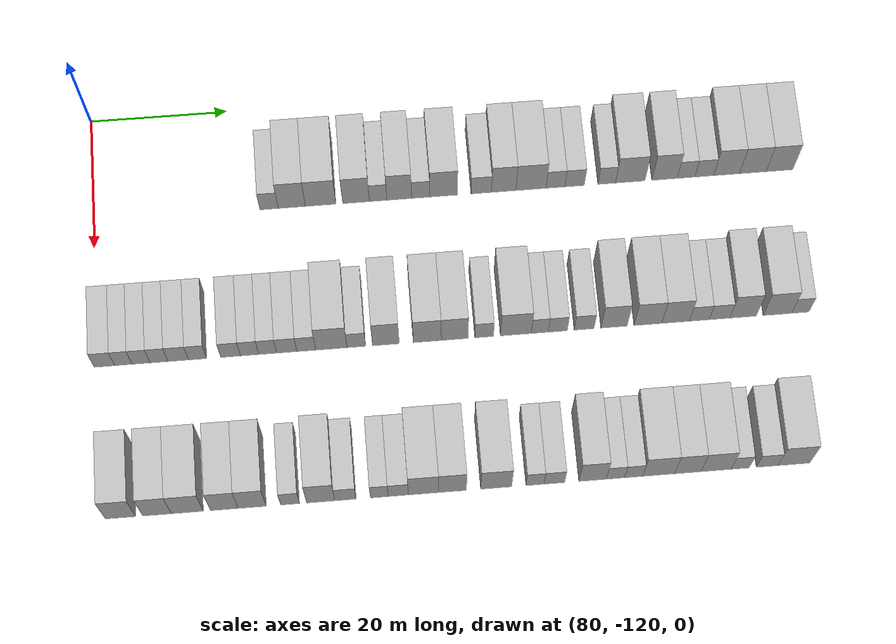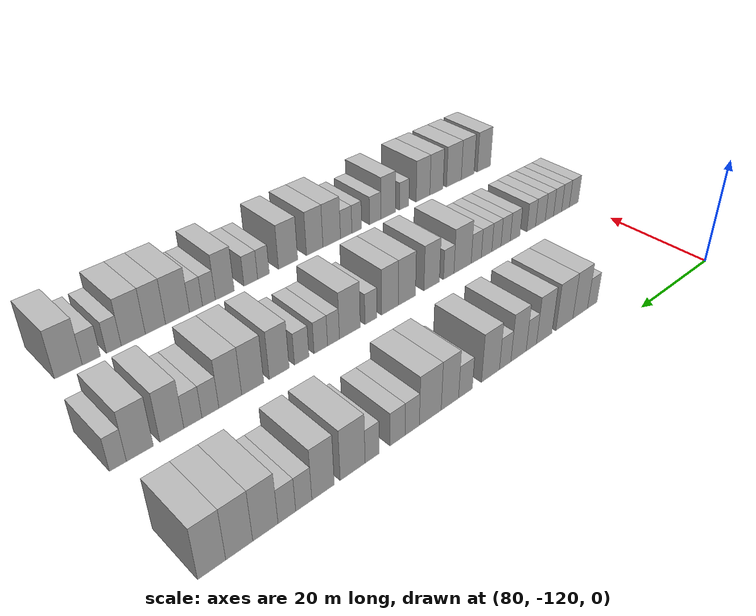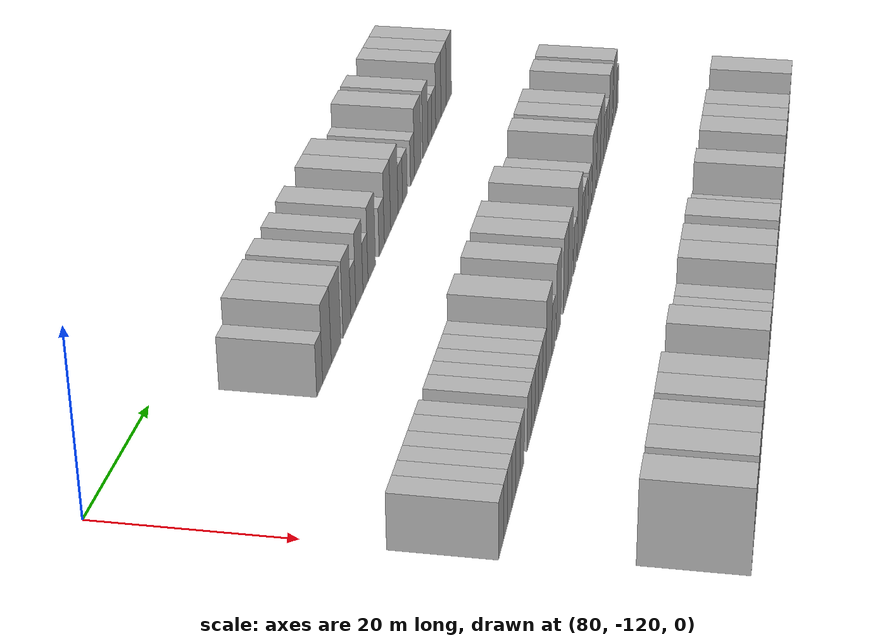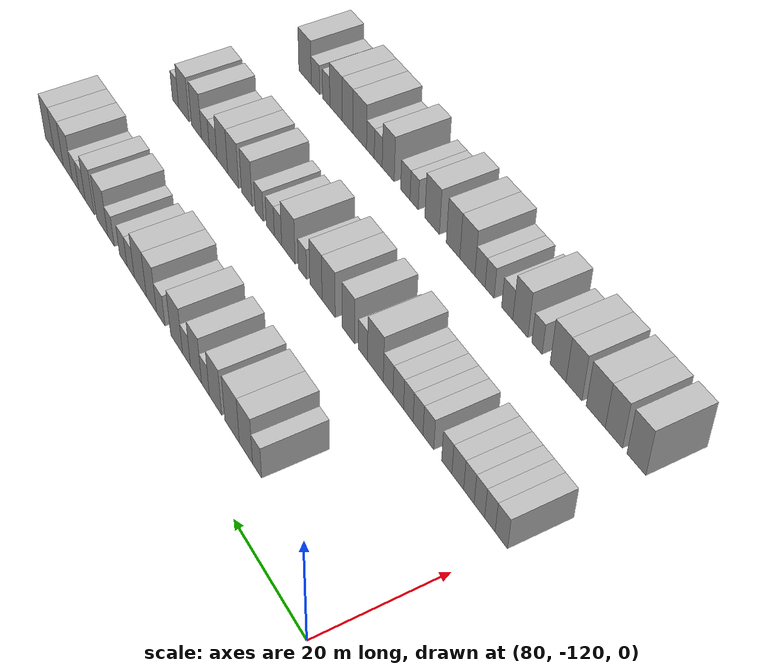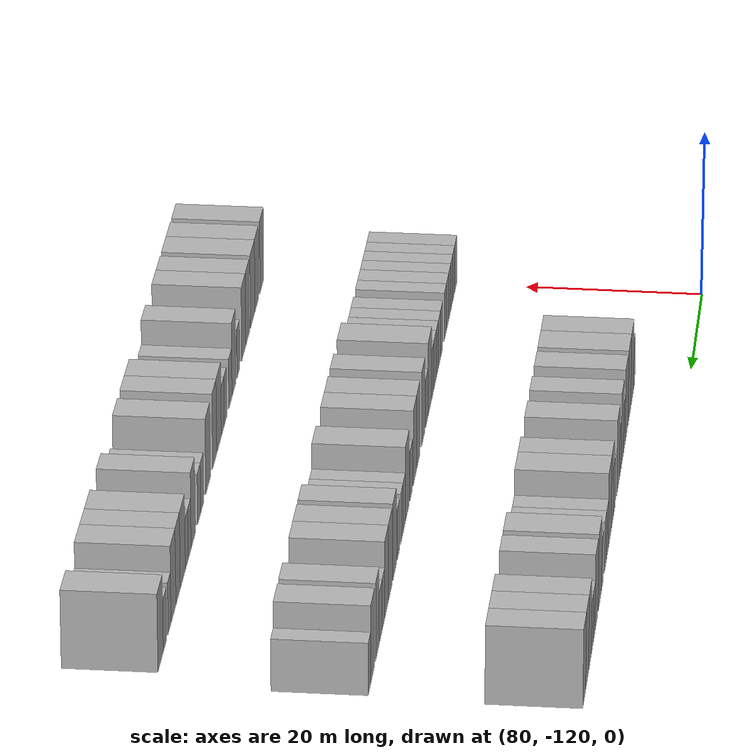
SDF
<sdf version="1.6">
 <world name="default">
  <model name="building_606">
   <static>1</static>
   <pose>91.0000 -94.5255 0 0.000000 0.000000 0.000000</pose>
   <link name="link">
    <pose>0 0 3.00 0 0 0</pose>
    <collision name="collision"><geometry><box><size>10.0000 2.6477 6.0000</size></box></geometry></collision>
    <visual name="visual">
     <cast_shadows>0</cast_shadows>
     <geometry><box><size>10.0000 2.6477 6.0000</size></box></geometry>
     <material>
      <script>
       <uri>model://HANNAS_wall/materials/scripts</uri>
       <uri>model://HANNAS_wall/materials/textures</uri>
       <name>vrc/HANNAS_wall</name>
      </script>
     </material>
    </visual>
   </link>
  </model>
  <model name="building_607">
   <static>1</static>
   <pose>91.0000 -91.2226 0 0.000000 0.000000 0.000000</pose>
   <link name="link">
    <pose>0 0 4.50 0 0 0</pose>
    <collision name="collision"><geometry><box><size>10.0000 3.9582 9.0000</size></box></geometry></collision>
    <visual name="visual">
     <cast_shadows>0</cast_shadows>
     <geometry><box><size>10.0000 3.9582 9.0000</size></box></geometry>
     <material>
      <script>
       <uri>model://HANNAS_wall/materials/scripts</uri>
       <uri>model://HANNAS_wall/materials/textures</uri>
       <name>vrc/HANNAS_wall</name>
      </script>
     </material>
    </visual>
   </link>
  </model>
  <model name="building_608">
   <static>1</static>
   <pose>91.0000 -87.0188 0 0.000000 0.000000 0.000000</pose>
   <link name="link">
    <pose>0 0 4.50 0 0 0</pose>
    <collision name="collision"><geometry><box><size>10.0000 4.4495 9.0000</size></box></geometry></collision>
    <visual name="visual">
     <cast_shadows>0</cast_shadows>
     <geometry><box><size>10.0000 4.4495 9.0000</size></box></geometry>
     <material>
      <script>
       <uri>model://HANNAS_wall/materials/scripts</uri>
       <uri>model://HANNAS_wall/materials/textures</uri>
       <name>vrc/HANNAS_wall</name>
      </script>
     </material>
    </visual>
   </link>
  </model>
  <model name="building_609">
   <static>1</static>
   <pose>91.0000 -81.8530 0 0.000000 0.000000 0.000000</pose>
   <link name="link">
    <pose>0 0 4.50 0 0 0</pose>
    <collision name="collision"><geometry><box><size>10.0000 3.8821 9.0000</size></box></geometry></collision>
    <visual name="visual">
     <cast_shadows>0</cast_shadows>
     <geometry><box><size>10.0000 3.8821 9.0000</size></box></geometry>
     <material>
      <script>
       <uri>model://HANNAS_wall/materials/scripts</uri>
       <uri>model://HANNAS_wall/materials/textures</uri>
       <name>vrc/HANNAS_wall</name>
      </script>
     </material>
    </visual>
   </link>
  </model>
  <model name="building_610">
   <static>1</static>
   <pose>91.0000 -78.6472 0 0.000000 0.000000 0.000000</pose>
   <link name="link">
    <pose>0 0 3.00 0 0 0</pose>
    <collision name="collision"><geometry><box><size>10.0000 2.5294 6.0000</size></box></geometry></collision>
    <visual name="visual">
     <cast_shadows>0</cast_shadows>
     <geometry><box><size>10.0000 2.5294 6.0000</size></box></geometry>
     <material>
      <script>
       <uri>model://HANNAS_wall/materials/scripts</uri>
       <uri>model://HANNAS_wall/materials/textures</uri>
       <name>vrc/HANNAS_wall</name>
      </script>
     </material>
    </visual>
   </link>
  </model>
  <model name="building_611">
   <static>1</static>
   <pose>91.0000 -75.5657 0 0.000000 0.000000 0.000000</pose>
   <link name="link">
    <pose>0 0 4.50 0 0 0</pose>
    <collision name="collision"><geometry><box><size>10.0000 3.6338 9.0000</size></box></geometry></collision>
    <visual name="visual">
     <cast_shadows>0</cast_shadows>
     <geometry><box><size>10.0000 3.6338 9.0000</size></box></geometry>
     <material>
      <script>
       <uri>model://HANNAS_wall/materials/scripts</uri>
       <uri>model://HANNAS_wall/materials/textures</uri>
       <name>vrc/HANNAS_wall</name>
      </script>
     </material>
    </visual>
   </link>
  </model>
  <model name="building_612">
   <static>1</static>
   <pose>91.0000 -72.4222 0 0.000000 0.000000 0.000000</pose>
   <link name="link">
    <pose>0 0 3.00 0 0 0</pose>
    <collision name="collision"><geometry><box><size>10.0000 2.6531 6.0000</size></box></geometry></collision>
    <visual name="visual">
     <cast_shadows>0</cast_shadows>
     <geometry><box><size>10.0000 2.6531 6.0000</size></box></geometry>
     <material>
      <script>
       <uri>model://HANNAS_wall/materials/scripts</uri>
       <uri>model://HANNAS_wall/materials/textures</uri>
       <name>vrc/HANNAS_wall</name>
      </script>
     </material>
    </visual>
   </link>
  </model>
  <model name="building_613">
   <static>1</static>
   <pose>91.0000 -69.0780 0 0.000000 0.000000 0.000000</pose>
   <link name="link">
    <pose>0 0 4.50 0 0 0</pose>
    <collision name="collision"><geometry><box><size>10.0000 4.0353 9.0000</size></box></geometry></collision>
    <visual name="visual">
     <cast_shadows>0</cast_shadows>
     <geometry><box><size>10.0000 4.0353 9.0000</size></box></geometry>
     <material>
      <script>
       <uri>model://HANNAS_wall/materials/scripts</uri>
       <uri>model://HANNAS_wall/materials/textures</uri>
       <name>vrc/HANNAS_wall</name>
      </script>
     </material>
    </visual>
   </link>
  </model>
  <model name="building_614">
   <static>1</static>
   <pose>91.0000 -63.5770 0 0.000000 0.000000 0.000000</pose>
   <link name="link">
    <pose>0 0 3.00 0 0 0</pose>
    <collision name="collision"><geometry><box><size>10.0000 2.9668 6.0000</size></box></geometry></collision>
    <visual name="visual">
     <cast_shadows>0</cast_shadows>
     <geometry><box><size>10.0000 2.9668 6.0000</size></box></geometry>
     <material>
      <script>
       <uri>model://HANNAS_wall/materials/scripts</uri>
       <uri>model://HANNAS_wall/materials/textures</uri>
       <name>vrc/HANNAS_wall</name>
      </script>
     </material>
    </visual>
   </link>
  </model>
  <model name="building_615">
   <static>1</static>
   <pose>91.0000 -60.2850 0 0.000000 0.000000 0.000000</pose>
   <link name="link">
    <pose>0 0 4.50 0 0 0</pose>
    <collision name="collision"><geometry><box><size>10.0000 3.6172 9.0000</size></box></geometry></collision>
    <visual name="visual">
     <cast_shadows>0</cast_shadows>
     <geometry><box><size>10.0000 3.6172 9.0000</size></box></geometry>
     <material>
      <script>
       <uri>model://HANNAS_wall/materials/scripts</uri>
       <uri>model://HANNAS_wall/materials/textures</uri>
       <name>vrc/HANNAS_wall</name>
      </script>
     </material>
    </visual>
   </link>
  </model>
  <model name="building_616">
   <static>1</static>
   <pose>91.0000 -56.2791 0 0.000000 0.000000 0.000000</pose>
   <link name="link">
    <pose>0 0 4.50 0 0 0</pose>
    <collision name="collision"><geometry><box><size>10.0000 4.3946 9.0000</size></box></geometry></collision>
    <visual name="visual">
     <cast_shadows>0</cast_shadows>
     <geometry><box><size>10.0000 4.3946 9.0000</size></box></geometry>
     <material>
      <script>
       <uri>model://HANNAS_wall/materials/scripts</uri>
       <uri>model://HANNAS_wall/materials/textures</uri>
       <name>vrc/HANNAS_wall</name>
      </script>
     </material>
    </visual>
   </link>
  </model>
  <model name="building_617">
   <static>1</static>
   <pose>91.0000 -52.6992 0 0.000000 0.000000 0.000000</pose>
   <link name="link">
    <pose>0 0 3.00 0 0 0</pose>
    <collision name="collision"><geometry><box><size>10.0000 2.7652 6.0000</size></box></geometry></collision>
    <visual name="visual">
     <cast_shadows>0</cast_shadows>
     <geometry><box><size>10.0000 2.7652 6.0000</size></box></geometry>
     <material>
      <script>
       <uri>model://HANNAS_wall/materials/scripts</uri>
       <uri>model://HANNAS_wall/materials/textures</uri>
       <name>vrc/HANNAS_wall</name>
      </script>
     </material>
    </visual>
   </link>
  </model>
  <model name="building_618">
   <static>1</static>
   <pose>91.0000 -49.8951 0 0.000000 0.000000 0.000000</pose>
   <link name="link">
    <pose>0 0 3.00 0 0 0</pose>
    <collision name="collision"><geometry><box><size>10.0000 2.8431 6.0000</size></box></geometry></collision>
    <visual name="visual">
     <cast_shadows>0</cast_shadows>
     <geometry><box><size>10.0000 2.8431 6.0000</size></box></geometry>
     <material>
      <script>
       <uri>model://HANNAS_wall/materials/scripts</uri>
       <uri>model://HANNAS_wall/materials/textures</uri>
       <name>vrc/HANNAS_wall</name>
      </script>
     </material>
    </visual>
   </link>
  </model>
  <model name="building_619">
   <static>1</static>
   <pose>91.0000 -45.1907 0 0.000000 0.000000 0.000000</pose>
   <link name="link">
    <pose>0 0 3.00 0 0 0</pose>
    <collision name="collision"><geometry><box><size>10.0000 2.5656 6.0000</size></box></geometry></collision>
    <visual name="visual">
     <cast_shadows>0</cast_shadows>
     <geometry><box><size>10.0000 2.5656 6.0000</size></box></geometry>
     <material>
      <script>
       <uri>model://HANNAS_wall/materials/scripts</uri>
       <uri>model://HANNAS_wall/materials/textures</uri>
       <name>vrc/HANNAS_wall</name>
      </script>
     </material>
    </visual>
   </link>
  </model>
  <model name="building_620">
   <static>1</static>
   <pose>91.0000 -41.7335 0 0.000000 0.000000 0.000000</pose>
   <link name="link">
    <pose>0 0 4.50 0 0 0</pose>
    <collision name="collision"><geometry><box><size>10.0000 4.3489 9.0000</size></box></geometry></collision>
    <visual name="visual">
     <cast_shadows>0</cast_shadows>
     <geometry><box><size>10.0000 4.3489 9.0000</size></box></geometry>
     <material>
      <script>
       <uri>model://HANNAS_wall/materials/scripts</uri>
       <uri>model://HANNAS_wall/materials/textures</uri>
       <name>vrc/HANNAS_wall</name>
      </script>
     </material>
    </visual>
   </link>
  </model>
  <model name="building_621">
   <static>1</static>
   <pose>91.0000 -36.6968 0 0.000000 0.000000 0.000000</pose>
   <link name="link">
    <pose>0 0 4.50 0 0 0</pose>
    <collision name="collision"><geometry><box><size>10.0000 3.7246 9.0000</size></box></geometry></collision>
    <visual name="visual">
     <cast_shadows>0</cast_shadows>
     <geometry><box><size>10.0000 3.7246 9.0000</size></box></geometry>
     <material>
      <script>
       <uri>model://HANNAS_wall/materials/scripts</uri>
       <uri>model://HANNAS_wall/materials/textures</uri>
       <name>vrc/HANNAS_wall</name>
      </script>
     </material>
    </visual>
   </link>
  </model>
  <model name="building_622">
   <static>1</static>
   <pose>91.0000 -33.5340 0 0.000000 0.000000 0.000000</pose>
   <link name="link">
    <pose>0 0 3.00 0 0 0</pose>
    <collision name="collision"><geometry><box><size>10.0000 2.6009 6.0000</size></box></geometry></collision>
    <visual name="visual">
     <cast_shadows>0</cast_shadows>
     <geometry><box><size>10.0000 2.6009 6.0000</size></box></geometry>
     <material>
      <script>
       <uri>model://HANNAS_wall/materials/scripts</uri>
       <uri>model://HANNAS_wall/materials/textures</uri>
       <name>vrc/HANNAS_wall</name>
      </script>
     </material>
    </visual>
   </link>
  </model>
  <model name="building_623">
   <static>1</static>
   <pose>91.0000 -30.8501 0 0.000000 0.000000 0.000000</pose>
   <link name="link">
    <pose>0 0 3.00 0 0 0</pose>
    <collision name="collision"><geometry><box><size>10.0000 2.7669 6.0000</size></box></geometry></collision>
    <visual name="visual">
     <cast_shadows>0</cast_shadows>
     <geometry><box><size>10.0000 2.7669 6.0000</size></box></geometry>
     <material>
      <script>
       <uri>model://HANNAS_wall/materials/scripts</uri>
       <uri>model://HANNAS_wall/materials/textures</uri>
       <name>vrc/HANNAS_wall</name>
      </script>
     </material>
    </visual>
   </link>
  </model>
  <model name="building_624">
   <static>1</static>
   <pose>91.0000 -27.5535 0 0.000000 0.000000 0.000000</pose>
   <link name="link">
    <pose>0 0 4.50 0 0 0</pose>
    <collision name="collision"><geometry><box><size>10.0000 3.8263 9.0000</size></box></geometry></collision>
    <visual name="visual">
     <cast_shadows>0</cast_shadows>
     <geometry><box><size>10.0000 3.8263 9.0000</size></box></geometry>
     <material>
      <script>
       <uri>model://HANNAS_wall/materials/scripts</uri>
       <uri>model://HANNAS_wall/materials/textures</uri>
       <name>vrc/HANNAS_wall</name>
      </script>
     </material>
    </visual>
   </link>
  </model>
  <model name="building_625">
   <static>1</static>
   <pose>91.0000 -23.6787 0 0.000000 0.000000 0.000000</pose>
   <link name="link">
    <pose>0 0 4.50 0 0 0</pose>
    <collision name="collision"><geometry><box><size>10.0000 3.9233 9.0000</size></box></geometry></collision>
    <visual name="visual">
     <cast_shadows>0</cast_shadows>
     <geometry><box><size>10.0000 3.9233 9.0000</size></box></geometry>
     <material>
      <script>
       <uri>model://HANNAS_wall/materials/scripts</uri>
       <uri>model://HANNAS_wall/materials/textures</uri>
       <name>vrc/HANNAS_wall</name>
      </script>
     </material>
    </visual>
   </link>
  </model>
  <model name="building_626">
   <static>1</static>
   <pose>91.0000 -19.7520 0 0.000000 0.000000 0.000000</pose>
   <link name="link">
    <pose>0 0 4.50 0 0 0</pose>
    <collision name="collision"><geometry><box><size>10.0000 3.9300 9.0000</size></box></geometry></collision>
    <visual name="visual">
     <cast_shadows>0</cast_shadows>
     <geometry><box><size>10.0000 3.9300 9.0000</size></box></geometry>
     <material>
      <script>
       <uri>model://HANNAS_wall/materials/scripts</uri>
       <uri>model://HANNAS_wall/materials/textures</uri>
       <name>vrc/HANNAS_wall</name>
      </script>
     </material>
    </visual>
   </link>
  </model>
  <model name="building_788">
   <static>1</static>
   <pose>113.0000 -118.9623 0 0.000000 0.000000 0.000000</pose>
   <link name="link">
    <pose>0 0 3.00 0 0 0</pose>
    <collision name="collision"><geometry><box><size>10.0000 2.8851 6.0000</size></box></geometry></collision>
    <visual name="visual">
     <cast_shadows>0</cast_shadows>
     <geometry><box><size>10.0000 2.8851 6.0000</size></box></geometry>
     <material>
      <script>
       <uri>model://HANNAS_wall/materials/scripts</uri>
       <uri>model://HANNAS_wall/materials/textures</uri>
       <name>vrc/HANNAS_wall</name>
      </script>
     </material>
    </visual>
   </link>
  </model>
  <model name="building_789">
   <static>1</static>
   <pose>113.0000 -116.2864 0 0.000000 0.000000 0.000000</pose>
   <link name="link">
    <pose>0 0 3.00 0 0 0</pose>
    <collision name="collision"><geometry><box><size>10.0000 2.4666 6.0000</size></box></geometry></collision>
    <visual name="visual">
     <cast_shadows>0</cast_shadows>
     <geometry><box><size>10.0000 2.4666 6.0000</size></box></geometry>
     <material>
      <script>
       <uri>model://HANNAS_wall/materials/scripts</uri>
       <uri>model://HANNAS_wall/materials/textures</uri>
       <name>vrc/HANNAS_wall</name>
      </script>
     </material>
    </visual>
   </link>
  </model>
  <model name="building_790">
   <static>1</static>
   <pose>113.0000 -113.7931 0 0.000000 0.000000 0.000000</pose>
   <link name="link">
    <pose>0 0 3.00 0 0 0</pose>
    <collision name="collision"><geometry><box><size>10.0000 2.5202 6.0000</size></box></geometry></collision>
    <visual name="visual">
     <cast_shadows>0</cast_shadows>
     <geometry><box><size>10.0000 2.5202 6.0000</size></box></geometry>
     <material>
      <script>
       <uri>model://HANNAS_wall/materials/scripts</uri>
       <uri>model://HANNAS_wall/materials/textures</uri>
       <name>vrc/HANNAS_wall</name>
      </script>
     </material>
    </visual>
   </link>
  </model>
  <model name="building_791">
   <static>1</static>
   <pose>113.0000 -111.2642 0 0.000000 0.000000 0.000000</pose>
   <link name="link">
    <pose>0 0 3.00 0 0 0</pose>
    <collision name="collision"><geometry><box><size>10.0000 2.5375 6.0000</size></box></geometry></collision>
    <visual name="visual">
     <cast_shadows>0</cast_shadows>
     <geometry><box><size>10.0000 2.5375 6.0000</size></box></geometry>
     <material>
      <script>
       <uri>model://HANNAS_wall/materials/scripts</uri>
       <uri>model://HANNAS_wall/materials/textures</uri>
       <name>vrc/HANNAS_wall</name>
      </script>
     </material>
    </visual>
   </link>
  </model>
  <model name="building_792">
   <static>1</static>
   <pose>113.0000 -108.5388 0 0.000000 0.000000 0.000000</pose>
   <link name="link">
    <pose>0 0 3.00 0 0 0</pose>
    <collision name="collision"><geometry><box><size>10.0000 2.9134 6.0000</size></box></geometry></collision>
    <visual name="visual">
     <cast_shadows>0</cast_shadows>
     <geometry><box><size>10.0000 2.9134 6.0000</size></box></geometry>
     <material>
      <script>
       <uri>model://HANNAS_wall/materials/scripts</uri>
       <uri>model://HANNAS_wall/materials/textures</uri>
       <name>vrc/HANNAS_wall</name>
      </script>
     </material>
    </visual>
   </link>
  </model>
  <model name="building_793">
   <static>1</static>
   <pose>113.0000 -105.7980 0 0.000000 0.000000 0.000000</pose>
   <link name="link">
    <pose>0 0 3.00 0 0 0</pose>
    <collision name="collision"><geometry><box><size>10.0000 2.5682 6.0000</size></box></geometry></collision>
    <visual name="visual">
     <cast_shadows>0</cast_shadows>
     <geometry><box><size>10.0000 2.5682 6.0000</size></box></geometry>
     <material>
      <script>
       <uri>model://HANNAS_wall/materials/scripts</uri>
       <uri>model://HANNAS_wall/materials/textures</uri>
       <name>vrc/HANNAS_wall</name>
      </script>
     </material>
    </visual>
   </link>
  </model>
  <model name="building_794">
   <static>1</static>
   <pose>113.0000 -101.1173 0 0.000000 0.000000 0.000000</pose>
   <link name="link">
    <pose>0 0 3.00 0 0 0</pose>
    <collision name="collision"><geometry><box><size>10.0000 2.7931 6.0000</size></box></geometry></collision>
    <visual name="visual">
     <cast_shadows>0</cast_shadows>
     <geometry><box><size>10.0000 2.7931 6.0000</size></box></geometry>
     <material>
      <script>
       <uri>model://HANNAS_wall/materials/scripts</uri>
       <uri>model://HANNAS_wall/materials/textures</uri>
       <name>vrc/HANNAS_wall</name>
      </script>
     </material>
    </visual>
   </link>
  </model>
  <model name="building_795">
   <static>1</static>
   <pose>113.0000 -98.4233 0 0.000000 0.000000 0.000000</pose>
   <link name="link">
    <pose>0 0 3.00 0 0 0</pose>
    <collision name="collision"><geometry><box><size>10.0000 2.5950 6.0000</size></box></geometry></collision>
    <visual name="visual">
     <cast_shadows>0</cast_shadows>
     <geometry><box><size>10.0000 2.5950 6.0000</size></box></geometry>
     <material>
      <script>
       <uri>model://HANNAS_wall/materials/scripts</uri>
       <uri>model://HANNAS_wall/materials/textures</uri>
       <name>vrc/HANNAS_wall</name>
      </script>
     </material>
    </visual>
   </link>
  </model>
  <model name="building_796">
   <static>1</static>
   <pose>113.0000 -95.8600 0 0.000000 0.000000 0.000000</pose>
   <link name="link">
    <pose>0 0 3.00 0 0 0</pose>
    <collision name="collision"><geometry><box><size>10.0000 2.5314 6.0000</size></box></geometry></collision>
    <visual name="visual">
     <cast_shadows>0</cast_shadows>
     <geometry><box><size>10.0000 2.5314 6.0000</size></box></geometry>
     <material>
      <script>
       <uri>model://HANNAS_wall/materials/scripts</uri>
       <uri>model://HANNAS_wall/materials/textures</uri>
       <name>vrc/HANNAS_wall</name>
      </script>
     </material>
    </visual>
   </link>
  </model>
  <model name="building_797">
   <static>1</static>
   <pose>113.0000 -93.1674 0 0.000000 0.000000 0.000000</pose>
   <link name="link">
    <pose>0 0 3.00 0 0 0</pose>
    <collision name="collision"><geometry><box><size>10.0000 2.8538 6.0000</size></box></geometry></collision>
    <visual name="visual">
     <cast_shadows>0</cast_shadows>
     <geometry><box><size>10.0000 2.8538 6.0000</size></box></geometry>
     <material>
      <script>
       <uri>model://HANNAS_wall/materials/scripts</uri>
       <uri>model://HANNAS_wall/materials/textures</uri>
       <name>vrc/HANNAS_wall</name>
      </script>
     </material>
    </visual>
   </link>
  </model>
  <model name="building_798">
   <static>1</static>
   <pose>113.0000 -90.3992 0 0.000000 0.000000 0.000000</pose>
   <link name="link">
    <pose>0 0 3.00 0 0 0</pose>
    <collision name="collision"><geometry><box><size>10.0000 2.6827 6.0000</size></box></geometry></collision>
    <visual name="visual">
     <cast_shadows>0</cast_shadows>
     <geometry><box><size>10.0000 2.6827 6.0000</size></box></geometry>
     <material>
      <script>
       <uri>model://HANNAS_wall/materials/scripts</uri>
       <uri>model://HANNAS_wall/materials/textures</uri>
       <name>vrc/HANNAS_wall</name>
      </script>
     </material>
    </visual>
   </link>
  </model>
  <model name="building_799">
   <static>1</static>
   <pose>113.0000 -86.8268 0 0.000000 0.000000 0.000000</pose>
   <link name="link">
    <pose>0 0 4.50 0 0 0</pose>
    <collision name="collision"><geometry><box><size>10.0000 4.4621 9.0000</size></box></geometry></collision>
    <visual name="visual">
     <cast_shadows>0</cast_shadows>
     <geometry><box><size>10.0000 4.4621 9.0000</size></box></geometry>
     <material>
      <script>
       <uri>model://HANNAS_wall/materials/scripts</uri>
       <uri>model://HANNAS_wall/materials/textures</uri>
       <name>vrc/HANNAS_wall</name>
      </script>
     </material>
    </visual>
   </link>
  </model>
  <model name="building_800">
   <static>1</static>
   <pose>113.0000 -83.2820 0 0.000000 0.000000 0.000000</pose>
   <link name="link">
    <pose>0 0 3.00 0 0 0</pose>
    <collision name="collision"><geometry><box><size>10.0000 2.6275 6.0000</size></box></geometry></collision>
    <visual name="visual">
     <cast_shadows>0</cast_shadows>
     <geometry><box><size>10.0000 2.6275 6.0000</size></box></geometry>
     <material>
      <script>
       <uri>model://HANNAS_wall/materials/scripts</uri>
       <uri>model://HANNAS_wall/materials/textures</uri>
       <name>vrc/HANNAS_wall</name>
      </script>
     </material>
    </visual>
   </link>
  </model>
  <model name="building_801">
   <static>1</static>
   <pose>113.0000 -79.0742 0 0.000000 0.000000 0.000000</pose>
   <link name="link">
    <pose>0 0 4.50 0 0 0</pose>
    <collision name="collision"><geometry><box><size>10.0000 3.7881 9.0000</size></box></geometry></collision>
    <visual name="visual">
     <cast_shadows>0</cast_shadows>
     <geometry><box><size>10.0000 3.7881 9.0000</size></box></geometry>
     <material>
      <script>
       <uri>model://HANNAS_wall/materials/scripts</uri>
       <uri>model://HANNAS_wall/materials/textures</uri>
       <name>vrc/HANNAS_wall</name>
      </script>
     </material>
    </visual>
   </link>
  </model>
  <model name="building_802">
   <static>1</static>
   <pose>113.0000 -73.1853 0 0.000000 0.000000 0.000000</pose>
   <link name="link">
    <pose>0 0 4.50 0 0 0</pose>
    <collision name="collision"><geometry><box><size>10.0000 3.9899 9.0000</size></box></geometry></collision>
    <visual name="visual">
     <cast_shadows>0</cast_shadows>
     <geometry><box><size>10.0000 3.9899 9.0000</size></box></geometry>
     <material>
      <script>
       <uri>model://HANNAS_wall/materials/scripts</uri>
       <uri>model://HANNAS_wall/materials/textures</uri>
       <name>vrc/HANNAS_wall</name>
      </script>
     </material>
    </visual>
   </link>
  </model>
  <model name="building_803">
   <static>1</static>
   <pose>113.0000 -69.2932 0 0.000000 0.000000 0.000000</pose>
   <link name="link">
    <pose>0 0 4.50 0 0 0</pose>
    <collision name="collision"><geometry><box><size>10.0000 3.7943 9.0000</size></box></geometry></collision>
    <visual name="visual">
     <cast_shadows>0</cast_shadows>
     <geometry><box><size>10.0000 3.7943 9.0000</size></box></geometry>
     <material>
      <script>
       <uri>model://HANNAS_wall/materials/scripts</uri>
       <uri>model://HANNAS_wall/materials/textures</uri>
       <name>vrc/HANNAS_wall</name>
      </script>
     </material>
    </visual>
   </link>
  </model>
  <model name="building_804">
   <static>1</static>
   <pose>113.0000 -65.0753 0 0.000000 0.000000 0.000000</pose>
   <link name="link">
    <pose>0 0 3.00 0 0 0</pose>
    <collision name="collision"><geometry><box><size>10.0000 2.6413 6.0000</size></box></geometry></collision>
    <visual name="visual">
     <cast_shadows>0</cast_shadows>
     <geometry><box><size>10.0000 2.6413 6.0000</size></box></geometry>
     <material>
      <script>
       <uri>model://HANNAS_wall/materials/scripts</uri>
       <uri>model://HANNAS_wall/materials/textures</uri>
       <name>vrc/HANNAS_wall</name>
      </script>
     </material>
    </visual>
   </link>
  </model>
  <model name="building_805">
   <static>1</static>
   <pose>113.0000 -60.5578 0 0.000000 0.000000 0.000000</pose>
   <link name="link">
    <pose>0 0 4.50 0 0 0</pose>
    <collision name="collision"><geometry><box><size>10.0000 4.3938 9.0000</size></box></geometry></collision>
    <visual name="visual">
     <cast_shadows>0</cast_shadows>
     <geometry><box><size>10.0000 4.3938 9.0000</size></box></geometry>
     <material>
      <script>
       <uri>model://HANNAS_wall/materials/scripts</uri>
       <uri>model://HANNAS_wall/materials/textures</uri>
       <name>vrc/HANNAS_wall</name>
      </script>
     </material>
    </visual>
   </link>
  </model>
  <model name="building_806">
   <static>1</static>
   <pose>113.0000 -57.1397 0 0.000000 0.000000 0.000000</pose>
   <link name="link">
    <pose>0 0 3.00 0 0 0</pose>
    <collision name="collision"><geometry><box><size>10.0000 2.4423 6.0000</size></box></geometry></collision>
    <visual name="visual">
     <cast_shadows>0</cast_shadows>
     <geometry><box><size>10.0000 2.4423 6.0000</size></box></geometry>
     <material>
      <script>
       <uri>model://HANNAS_wall/materials/scripts</uri>
       <uri>model://HANNAS_wall/materials/textures</uri>
       <name>vrc/HANNAS_wall</name>
      </script>
     </material>
    </visual>
   </link>
  </model>
  <model name="building_807">
   <static>1</static>
   <pose>113.0000 -54.5702 0 0.000000 0.000000 0.000000</pose>
   <link name="link">
    <pose>0 0 3.00 0 0 0</pose>
    <collision name="collision"><geometry><box><size>10.0000 2.6968 6.0000</size></box></geometry></collision>
    <visual name="visual">
     <cast_shadows>0</cast_shadows>
     <geometry><box><size>10.0000 2.6968 6.0000</size></box></geometry>
     <material>
      <script>
       <uri>model://HANNAS_wall/materials/scripts</uri>
       <uri>model://HANNAS_wall/materials/textures</uri>
       <name>vrc/HANNAS_wall</name>
      </script>
     </material>
    </visual>
   </link>
  </model>
  <model name="building_808">
   <static>1</static>
   <pose>113.0000 -50.8086 0 0.000000 0.000000 0.000000</pose>
   <link name="link">
    <pose>0 0 3.00 0 0 0</pose>
    <collision name="collision"><geometry><box><size>10.0000 2.8263 6.0000</size></box></geometry></collision>
    <visual name="visual">
     <cast_shadows>0</cast_shadows>
     <geometry><box><size>10.0000 2.8263 6.0000</size></box></geometry>
     <material>
      <script>
       <uri>model://HANNAS_wall/materials/scripts</uri>
       <uri>model://HANNAS_wall/materials/textures</uri>
       <name>vrc/HANNAS_wall</name>
      </script>
     </material>
    </visual>
   </link>
  </model>
  <model name="building_809">
   <static>1</static>
   <pose>113.0000 -46.5277 0 0.000000 0.000000 0.000000</pose>
   <link name="link">
    <pose>0 0 4.50 0 0 0</pose>
    <collision name="collision"><geometry><box><size>10.0000 3.7356 9.0000</size></box></geometry></collision>
    <visual name="visual">
     <cast_shadows>0</cast_shadows>
     <geometry><box><size>10.0000 3.7356 9.0000</size></box></geometry>
     <material>
      <script>
       <uri>model://HANNAS_wall/materials/scripts</uri>
       <uri>model://HANNAS_wall/materials/textures</uri>
       <name>vrc/HANNAS_wall</name>
      </script>
     </material>
    </visual>
   </link>
  </model>
  <model name="building_810">
   <static>1</static>
   <pose>113.0000 -41.6770 0 0.000000 0.000000 0.000000</pose>
   <link name="link">
    <pose>0 0 4.50 0 0 0</pose>
    <collision name="collision"><geometry><box><size>10.0000 3.9657 9.0000</size></box></geometry></collision>
    <visual name="visual">
     <cast_shadows>0</cast_shadows>
     <geometry><box><size>10.0000 3.9657 9.0000</size></box></geometry>
     <material>
      <script>
       <uri>model://HANNAS_wall/materials/scripts</uri>
       <uri>model://HANNAS_wall/materials/textures</uri>
       <name>vrc/HANNAS_wall</name>
      </script>
     </material>
    </visual>
   </link>
  </model>
  <model name="building_811">
   <static>1</static>
   <pose>113.0000 -37.7129 0 0.000000 0.000000 0.000000</pose>
   <link name="link">
    <pose>0 0 4.50 0 0 0</pose>
    <collision name="collision"><geometry><box><size>10.0000 3.9626 9.0000</size></box></geometry></collision>
    <visual name="visual">
     <cast_shadows>0</cast_shadows>
     <geometry><box><size>10.0000 3.9626 9.0000</size></box></geometry>
     <material>
      <script>
       <uri>model://HANNAS_wall/materials/scripts</uri>
       <uri>model://HANNAS_wall/materials/textures</uri>
       <name>vrc/HANNAS_wall</name>
      </script>
     </material>
    </visual>
   </link>
  </model>
  <model name="building_812">
   <static>1</static>
   <pose>113.0000 -34.3070 0 0.000000 0.000000 0.000000</pose>
   <link name="link">
    <pose>0 0 3.00 0 0 0</pose>
    <collision name="collision"><geometry><box><size>10.0000 2.8492 6.0000</size></box></geometry></collision>
    <visual name="visual">
     <cast_shadows>0</cast_shadows>
     <geometry><box><size>10.0000 2.8492 6.0000</size></box></geometry>
     <material>
      <script>
       <uri>model://HANNAS_wall/materials/scripts</uri>
       <uri>model://HANNAS_wall/materials/textures</uri>
       <name>vrc/HANNAS_wall</name>
      </script>
     </material>
    </visual>
   </link>
  </model>
  <model name="building_813">
   <static>1</static>
   <pose>113.0000 -31.4080 0 0.000000 0.000000 0.000000</pose>
   <link name="link">
    <pose>0 0 3.00 0 0 0</pose>
    <collision name="collision"><geometry><box><size>10.0000 2.9486 6.0000</size></box></geometry></collision>
    <visual name="visual">
     <cast_shadows>0</cast_shadows>
     <geometry><box><size>10.0000 2.9486 6.0000</size></box></geometry>
     <material>
      <script>
       <uri>model://HANNAS_wall/materials/scripts</uri>
       <uri>model://HANNAS_wall/materials/textures</uri>
       <name>vrc/HANNAS_wall</name>
      </script>
     </material>
    </visual>
   </link>
  </model>
  <model name="building_814">
   <static>1</static>
   <pose>113.0000 -28.0285 0 0.000000 0.000000 0.000000</pose>
   <link name="link">
    <pose>0 0 4.50 0 0 0</pose>
    <collision name="collision"><geometry><box><size>10.0000 3.8104 9.0000</size></box></geometry></collision>
    <visual name="visual">
     <cast_shadows>0</cast_shadows>
     <geometry><box><size>10.0000 3.8104 9.0000</size></box></geometry>
     <material>
      <script>
       <uri>model://HANNAS_wall/materials/scripts</uri>
       <uri>model://HANNAS_wall/materials/textures</uri>
       <name>vrc/HANNAS_wall</name>
      </script>
     </material>
    </visual>
   </link>
  </model>
  <model name="building_815">
   <static>1</static>
   <pose>113.0000 -23.0786 0 0.000000 0.000000 0.000000</pose>
   <link name="link">
    <pose>0 0 4.50 0 0 0</pose>
    <collision name="collision"><geometry><box><size>10.0000 4.0895 9.0000</size></box></geometry></collision>
    <visual name="visual">
     <cast_shadows>0</cast_shadows>
     <geometry><box><size>10.0000 4.0895 9.0000</size></box></geometry>
     <material>
      <script>
       <uri>model://HANNAS_wall/materials/scripts</uri>
       <uri>model://HANNAS_wall/materials/textures</uri>
       <name>vrc/HANNAS_wall</name>
      </script>
     </material>
    </visual>
   </link>
  </model>
  <model name="building_816">
   <static>1</static>
   <pose>113.0000 -19.7819 0 0.000000 0.000000 0.000000</pose>
   <link name="link">
    <pose>0 0 3.00 0 0 0</pose>
    <collision name="collision"><geometry><box><size>10.0000 2.5038 6.0000</size></box></geometry></collision>
    <visual name="visual">
     <cast_shadows>0</cast_shadows>
     <geometry><box><size>10.0000 2.5038 6.0000</size></box></geometry>
     <material>
      <script>
       <uri>model://HANNAS_wall/materials/scripts</uri>
       <uri>model://HANNAS_wall/materials/textures</uri>
       <name>vrc/HANNAS_wall</name>
      </script>
     </material>
    </visual>
   </link>
  </model>
  <model name="building_989">
   <static>1</static>
   <pose>135.0000 -117.2959 0 0.000000 0.000000 0.000000</pose>
   <link name="link">
    <pose>0 0 4.50 0 0 0</pose>
    <collision name="collision"><geometry><box><size>10.0000 4.1439 9.0000</size></box></geometry></collision>
    <visual name="visual">
     <cast_shadows>0</cast_shadows>
     <geometry><box><size>10.0000 4.1439 9.0000</size></box></geometry>
     <material>
      <script>
       <uri>model://HANNAS_wall/materials/scripts</uri>
       <uri>model://HANNAS_wall/materials/textures</uri>
       <name>vrc/HANNAS_wall</name>
      </script>
     </material>
    </visual>
   </link>
  </model>
  <model name="building_990">
   <static>1</static>
   <pose>135.0000 -112.2641 0 0.000000 0.000000 0.000000</pose>
   <link name="link">
    <pose>0 0 4.50 0 0 0</pose>
    <collision name="collision"><geometry><box><size>10.0000 3.9197 9.0000</size></box></geometry></collision>
    <visual name="visual">
     <cast_shadows>0</cast_shadows>
     <geometry><box><size>10.0000 3.9197 9.0000</size></box></geometry>
     <material>
      <script>
       <uri>model://HANNAS_wall/materials/scripts</uri>
       <uri>model://HANNAS_wall/materials/textures</uri>
       <name>vrc/HANNAS_wall</name>
      </script>
     </material>
    </visual>
   </link>
  </model>
  <model name="building_991">
   <static>1</static>
   <pose>135.0000 -108.0994 0 0.000000 0.000000 0.000000</pose>
   <link name="link">
    <pose>0 0 4.50 0 0 0</pose>
    <collision name="collision"><geometry><box><size>10.0000 4.4097 9.0000</size></box></geometry></collision>
    <visual name="visual">
     <cast_shadows>0</cast_shadows>
     <geometry><box><size>10.0000 4.4097 9.0000</size></box></geometry>
     <material>
      <script>
       <uri>model://HANNAS_wall/materials/scripts</uri>
       <uri>model://HANNAS_wall/materials/textures</uri>
       <name>vrc/HANNAS_wall</name>
      </script>
     </material>
    </visual>
   </link>
  </model>
  <model name="building_992">
   <static>1</static>
   <pose>135.0000 -102.9846 0 0.000000 0.000000 0.000000</pose>
   <link name="link">
    <pose>0 0 4.50 0 0 0</pose>
    <collision name="collision"><geometry><box><size>10.0000 3.8199 9.0000</size></box></geometry></collision>
    <visual name="visual">
     <cast_shadows>0</cast_shadows>
     <geometry><box><size>10.0000 3.8199 9.0000</size></box></geometry>
     <material>
      <script>
       <uri>model://HANNAS_wall/materials/scripts</uri>
       <uri>model://HANNAS_wall/materials/textures</uri>
       <name>vrc/HANNAS_wall</name>
      </script>
     </material>
    </visual>
   </link>
  </model>
  <model name="building_993">
   <static>1</static>
   <pose>135.0000 -99.1418 0 0.000000 0.000000 0.000000</pose>
   <link name="link">
    <pose>0 0 4.50 0 0 0</pose>
    <collision name="collision"><geometry><box><size>10.0000 3.8656 9.0000</size></box></geometry></collision>
    <visual name="visual">
     <cast_shadows>0</cast_shadows>
     <geometry><box><size>10.0000 3.8656 9.0000</size></box></geometry>
     <material>
      <script>
       <uri>model://HANNAS_wall/materials/scripts</uri>
       <uri>model://HANNAS_wall/materials/textures</uri>
       <name>vrc/HANNAS_wall</name>
      </script>
     </material>
    </visual>
   </link>
  </model>
  <model name="building_994">
   <static>1</static>
   <pose>135.0000 -93.9133 0 0.000000 0.000000 0.000000</pose>
   <link name="link">
    <pose>0 0 3.00 0 0 0</pose>
    <collision name="collision"><geometry><box><size>10.0000 2.5916 6.0000</size></box></geometry></collision>
    <visual name="visual">
     <cast_shadows>0</cast_shadows>
     <geometry><box><size>10.0000 2.5916 6.0000</size></box></geometry>
     <material>
      <script>
       <uri>model://HANNAS_wall/materials/scripts</uri>
       <uri>model://HANNAS_wall/materials/textures</uri>
       <name>vrc/HANNAS_wall</name>
      </script>
     </material>
    </visual>
   </link>
  </model>
  <model name="building_995">
   <static>1</static>
   <pose>135.0000 -89.6670 0 0.000000 0.000000 0.000000</pose>
   <link name="link">
    <pose>0 0 4.50 0 0 0</pose>
    <collision name="collision"><geometry><box><size>10.0000 3.9010 9.0000</size></box></geometry></collision>
    <visual name="visual">
     <cast_shadows>0</cast_shadows>
     <geometry><box><size>10.0000 3.9010 9.0000</size></box></geometry>
     <material>
      <script>
       <uri>model://HANNAS_wall/materials/scripts</uri>
       <uri>model://HANNAS_wall/materials/textures</uri>
       <name>vrc/HANNAS_wall</name>
      </script>
     </material>
    </visual>
   </link>
  </model>
  <model name="building_996">
   <static>1</static>
   <pose>135.0000 -86.2476 0 0.000000 0.000000 0.000000</pose>
   <link name="link">
    <pose>0 0 3.00 0 0 0</pose>
    <collision name="collision"><geometry><box><size>10.0000 2.9379 6.0000</size></box></geometry></collision>
    <visual name="visual">
     <cast_shadows>0</cast_shadows>
     <geometry><box><size>10.0000 2.9379 6.0000</size></box></geometry>
     <material>
      <script>
       <uri>model://HANNAS_wall/materials/scripts</uri>
       <uri>model://HANNAS_wall/materials/textures</uri>
       <name>vrc/HANNAS_wall</name>
      </script>
     </material>
    </visual>
   </link>
  </model>
  <model name="building_997">
   <static>1</static>
   <pose>135.0000 -81.5582 0 0.000000 0.000000 0.000000</pose>
   <link name="link">
    <pose>0 0 3.00 0 0 0</pose>
    <collision name="collision"><geometry><box><size>10.0000 2.4408 6.0000</size></box></geometry></collision>
    <visual name="visual">
     <cast_shadows>0</cast_shadows>
     <geometry><box><size>10.0000 2.4408 6.0000</size></box></geometry>
     <material>
      <script>
       <uri>model://HANNAS_wall/materials/scripts</uri>
       <uri>model://HANNAS_wall/materials/textures</uri>
       <name>vrc/HANNAS_wall</name>
      </script>
     </material>
    </visual>
   </link>
  </model>
  <model name="building_998">
   <static>1</static>
   <pose>135.0000 -78.9373 0 0.000000 0.000000 0.000000</pose>
   <link name="link">
    <pose>0 0 3.00 0 0 0</pose>
    <collision name="collision"><geometry><box><size>10.0000 2.8010 6.0000</size></box></geometry></collision>
    <visual name="visual">
     <cast_shadows>0</cast_shadows>
     <geometry><box><size>10.0000 2.8010 6.0000</size></box></geometry>
     <material>
      <script>
       <uri>model://HANNAS_wall/materials/scripts</uri>
       <uri>model://HANNAS_wall/materials/textures</uri>
       <name>vrc/HANNAS_wall</name>
      </script>
     </material>
    </visual>
   </link>
  </model>
  <model name="building_999">
   <static>1</static>
   <pose>135.0000 -75.4351 0 0.000000 0.000000 0.000000</pose>
   <link name="link">
    <pose>0 0 4.50 0 0 0</pose>
    <collision name="collision"><geometry><box><size>10.0000 4.2033 9.0000</size></box></geometry></collision>
    <visual name="visual">
     <cast_shadows>0</cast_shadows>
     <geometry><box><size>10.0000 4.2033 9.0000</size></box></geometry>
     <material>
      <script>
       <uri>model://HANNAS_wall/materials/scripts</uri>
       <uri>model://HANNAS_wall/materials/textures</uri>
       <name>vrc/HANNAS_wall</name>
      </script>
     </material>
    </visual>
   </link>
  </model>
  <model name="building_1000">
   <static>1</static>
   <pose>135.0000 -71.4119 0 0.000000 0.000000 0.000000</pose>
   <link name="link">
    <pose>0 0 4.50 0 0 0</pose>
    <collision name="collision"><geometry><box><size>10.0000 3.8431 9.0000</size></box></geometry></collision>
    <visual name="visual">
     <cast_shadows>0</cast_shadows>
     <geometry><box><size>10.0000 3.8431 9.0000</size></box></geometry>
     <material>
      <script>
       <uri>model://HANNAS_wall/materials/scripts</uri>
       <uri>model://HANNAS_wall/materials/textures</uri>
       <name>vrc/HANNAS_wall</name>
      </script>
     </material>
    </visual>
   </link>
  </model>
  <model name="building_1001">
   <static>1</static>
   <pose>135.0000 -65.3451 0 0.000000 0.000000 0.000000</pose>
   <link name="link">
    <pose>0 0 4.50 0 0 0</pose>
    <collision name="collision"><geometry><box><size>10.0000 4.2905 9.0000</size></box></geometry></collision>
    <visual name="visual">
     <cast_shadows>0</cast_shadows>
     <geometry><box><size>10.0000 4.2905 9.0000</size></box></geometry>
     <material>
      <script>
       <uri>model://HANNAS_wall/materials/scripts</uri>
       <uri>model://HANNAS_wall/materials/textures</uri>
       <name>vrc/HANNAS_wall</name>
      </script>
     </material>
    </visual>
   </link>
  </model>
  <model name="building_1002">
   <static>1</static>
   <pose>135.0000 -59.9524 0 0.000000 0.000000 0.000000</pose>
   <link name="link">
    <pose>0 0 3.00 0 0 0</pose>
    <collision name="collision"><geometry><box><size>10.0000 2.4948 6.0000</size></box></geometry></collision>
    <visual name="visual">
     <cast_shadows>0</cast_shadows>
     <geometry><box><size>10.0000 2.4948 6.0000</size></box></geometry>
     <material>
      <script>
       <uri>model://HANNAS_wall/materials/scripts</uri>
       <uri>model://HANNAS_wall/materials/textures</uri>
       <name>vrc/HANNAS_wall</name>
      </script>
     </material>
    </visual>
   </link>
  </model>
  <model name="building_1003">
   <static>1</static>
   <pose>135.0000 -57.2673 0 0.000000 0.000000 0.000000</pose>
   <link name="link">
    <pose>0 0 3.00 0 0 0</pose>
    <collision name="collision"><geometry><box><size>10.0000 2.8754 6.0000</size></box></geometry></collision>
    <visual name="visual">
     <cast_shadows>0</cast_shadows>
     <geometry><box><size>10.0000 2.8754 6.0000</size></box></geometry>
     <material>
      <script>
       <uri>model://HANNAS_wall/materials/scripts</uri>
       <uri>model://HANNAS_wall/materials/textures</uri>
       <name>vrc/HANNAS_wall</name>
      </script>
     </material>
    </visual>
   </link>
  </model>
  <model name="building_1004">
   <static>1</static>
   <pose>135.0000 -51.9282 0 0.000000 0.000000 0.000000</pose>
   <link name="link">
    <pose>0 0 4.50 0 0 0</pose>
    <collision name="collision"><geometry><box><size>10.0000 3.8028 9.0000</size></box></geometry></collision>
    <visual name="visual">
     <cast_shadows>0</cast_shadows>
     <geometry><box><size>10.0000 3.8028 9.0000</size></box></geometry>
     <material>
      <script>
       <uri>model://HANNAS_wall/materials/scripts</uri>
       <uri>model://HANNAS_wall/materials/textures</uri>
       <name>vrc/HANNAS_wall</name>
      </script>
     </material>
    </visual>
   </link>
  </model>
  <model name="building_1005">
   <static>1</static>
   <pose>135.0000 -48.7577 0 0.000000 0.000000 0.000000</pose>
   <link name="link">
    <pose>0 0 3.00 0 0 0</pose>
    <collision name="collision"><geometry><box><size>10.0000 2.5382 6.0000</size></box></geometry></collision>
    <visual name="visual">
     <cast_shadows>0</cast_shadows>
     <geometry><box><size>10.0000 2.5382 6.0000</size></box></geometry>
     <material>
      <script>
       <uri>model://HANNAS_wall/materials/scripts</uri>
       <uri>model://HANNAS_wall/materials/textures</uri>
       <name>vrc/HANNAS_wall</name>
      </script>
     </material>
    </visual>
   </link>
  </model>
  <model name="building_1006">
   <static>1</static>
   <pose>135.0000 -46.2278 0 0.000000 0.000000 0.000000</pose>
   <link name="link">
    <pose>0 0 3.00 0 0 0</pose>
    <collision name="collision"><geometry><box><size>10.0000 2.5216 6.0000</size></box></geometry></collision>
    <visual name="visual">
     <cast_shadows>0</cast_shadows>
     <geometry><box><size>10.0000 2.5216 6.0000</size></box></geometry>
     <material>
      <script>
       <uri>model://HANNAS_wall/materials/scripts</uri>
       <uri>model://HANNAS_wall/materials/textures</uri>
       <name>vrc/HANNAS_wall</name>
      </script>
     </material>
    </visual>
   </link>
  </model>
  <model name="building_1007">
   <static>1</static>
   <pose>135.0000 -42.7253 0 0.000000 0.000000 0.000000</pose>
   <link name="link">
    <pose>0 0 4.50 0 0 0</pose>
    <collision name="collision"><geometry><box><size>10.0000 4.4835 9.0000</size></box></geometry></collision>
    <visual name="visual">
     <cast_shadows>0</cast_shadows>
     <geometry><box><size>10.0000 4.4835 9.0000</size></box></geometry>
     <material>
      <script>
       <uri>model://HANNAS_wall/materials/scripts</uri>
       <uri>model://HANNAS_wall/materials/textures</uri>
       <name>vrc/HANNAS_wall</name>
      </script>
     </material>
    </visual>
   </link>
  </model>
  <model name="building_1008">
   <static>1</static>
   <pose>135.0000 -38.6493 0 0.000000 0.000000 0.000000</pose>
   <link name="link">
    <pose>0 0 4.50 0 0 0</pose>
    <collision name="collision"><geometry><box><size>10.0000 3.6685 9.0000</size></box></geometry></collision>
    <visual name="visual">
     <cast_shadows>0</cast_shadows>
     <geometry><box><size>10.0000 3.6685 9.0000</size></box></geometry>
     <material>
      <script>
       <uri>model://HANNAS_wall/materials/scripts</uri>
       <uri>model://HANNAS_wall/materials/textures</uri>
       <name>vrc/HANNAS_wall</name>
      </script>
     </material>
    </visual>
   </link>
  </model>
  <model name="building_1009">
   <static>1</static>
   <pose>135.0000 -34.6990 0 0.000000 0.000000 0.000000</pose>
   <link name="link">
    <pose>0 0 4.50 0 0 0</pose>
    <collision name="collision"><geometry><box><size>10.0000 4.2321 9.0000</size></box></geometry></collision>
    <visual name="visual">
     <cast_shadows>0</cast_shadows>
     <geometry><box><size>10.0000 4.2321 9.0000</size></box></geometry>
     <material>
      <script>
       <uri>model://HANNAS_wall/materials/scripts</uri>
       <uri>model://HANNAS_wall/materials/textures</uri>
       <name>vrc/HANNAS_wall</name>
      </script>
     </material>
    </visual>
   </link>
  </model>
  <model name="building_1010">
   <static>1</static>
   <pose>135.0000 -31.3082 0 0.000000 0.000000 0.000000</pose>
   <link name="link">
    <pose>0 0 3.00 0 0 0</pose>
    <collision name="collision"><geometry><box><size>10.0000 2.5495 6.0000</size></box></geometry></collision>
    <visual name="visual">
     <cast_shadows>0</cast_shadows>
     <geometry><box><size>10.0000 2.5495 6.0000</size></box></geometry>
     <material>
      <script>
       <uri>model://HANNAS_wall/materials/scripts</uri>
       <uri>model://HANNAS_wall/materials/textures</uri>
       <name>vrc/HANNAS_wall</name>
      </script>
     </material>
    </visual>
   </link>
  </model>
  <model name="building_1011">
   <static>1</static>
   <pose>135.0000 -27.5340 0 0.000000 0.000000 0.000000</pose>
   <link name="link">
    <pose>0 0 3.00 0 0 0</pose>
    <collision name="collision"><geometry><box><size>10.0000 2.9989 6.0000</size></box></geometry></collision>
    <visual name="visual">
     <cast_shadows>0</cast_shadows>
     <geometry><box><size>10.0000 2.9989 6.0000</size></box></geometry>
     <material>
      <script>
       <uri>model://HANNAS_wall/materials/scripts</uri>
       <uri>model://HANNAS_wall/materials/textures</uri>
       <name>vrc/HANNAS_wall</name>
      </script>
     </material>
    </visual>
   </link>
  </model>
  <model name="building_1012">
   <static>1</static>
   <pose>135.0000 -23.7907 0 0.000000 0.000000 0.000000</pose>
   <link name="link">
    <pose>0 0 4.50 0 0 0</pose>
    <collision name="collision"><geometry><box><size>10.0000 4.4877 9.0000</size></box></geometry></collision>
    <visual name="visual">
     <cast_shadows>0</cast_shadows>
     <geometry><box><size>10.0000 4.4877 9.0000</size></box></geometry>
     <material>
      <script>
       <uri>model://HANNAS_wall/materials/scripts</uri>
       <uri>model://HANNAS_wall/materials/textures</uri>
       <name>vrc/HANNAS_wall</name>
      </script>
     </material>
    </visual>
   </link>
  </model>
 </world>
</sdf>
